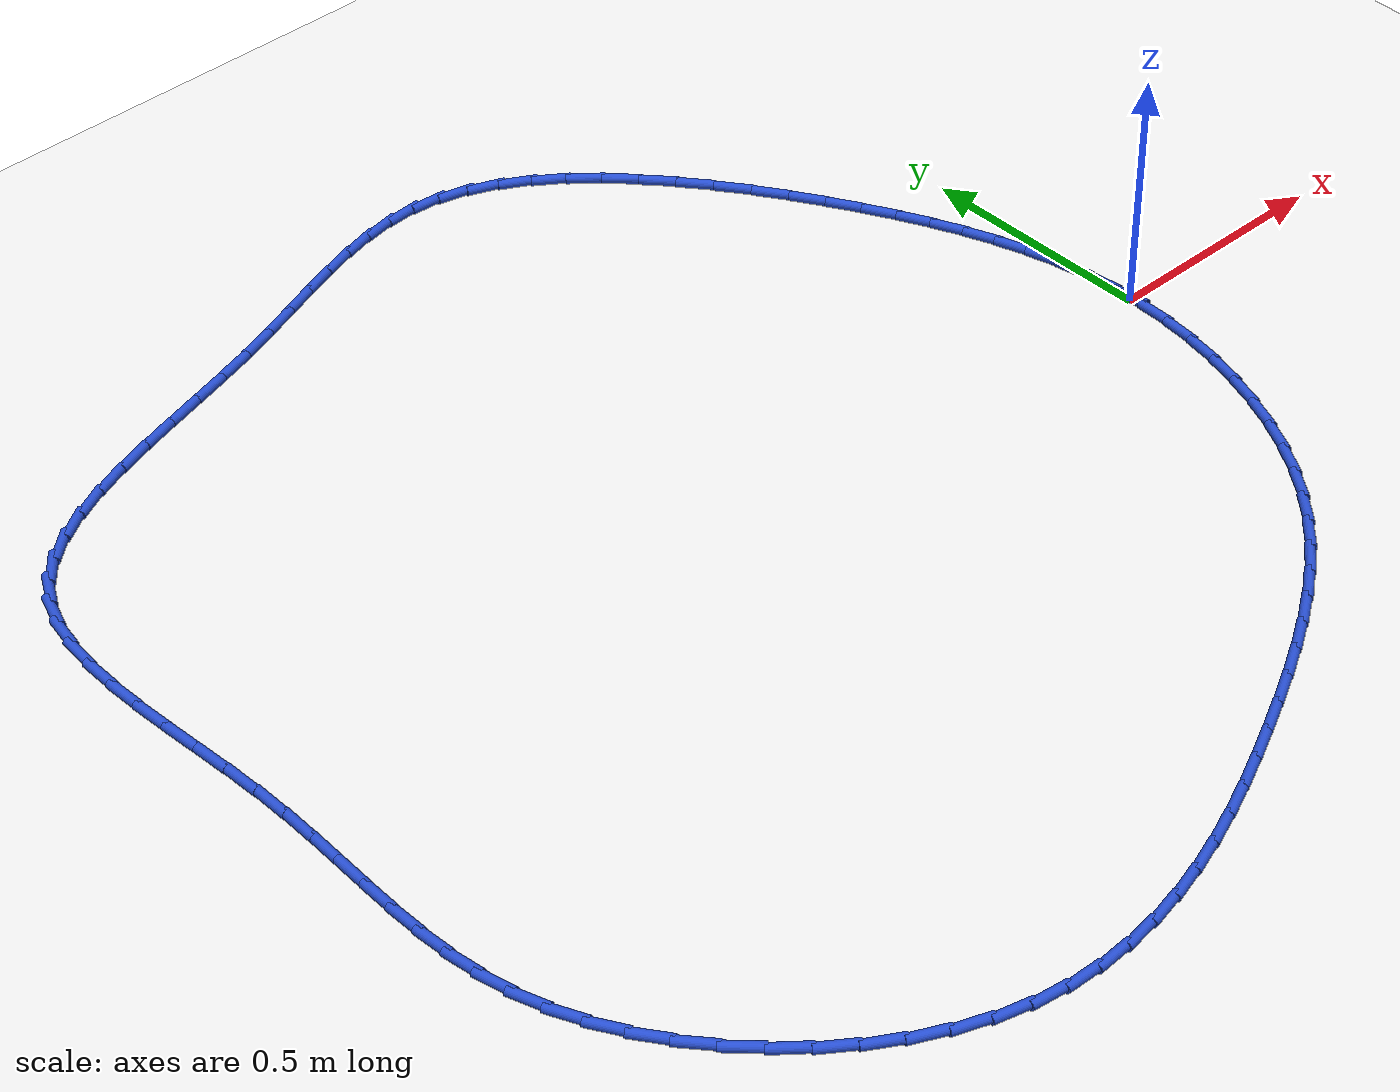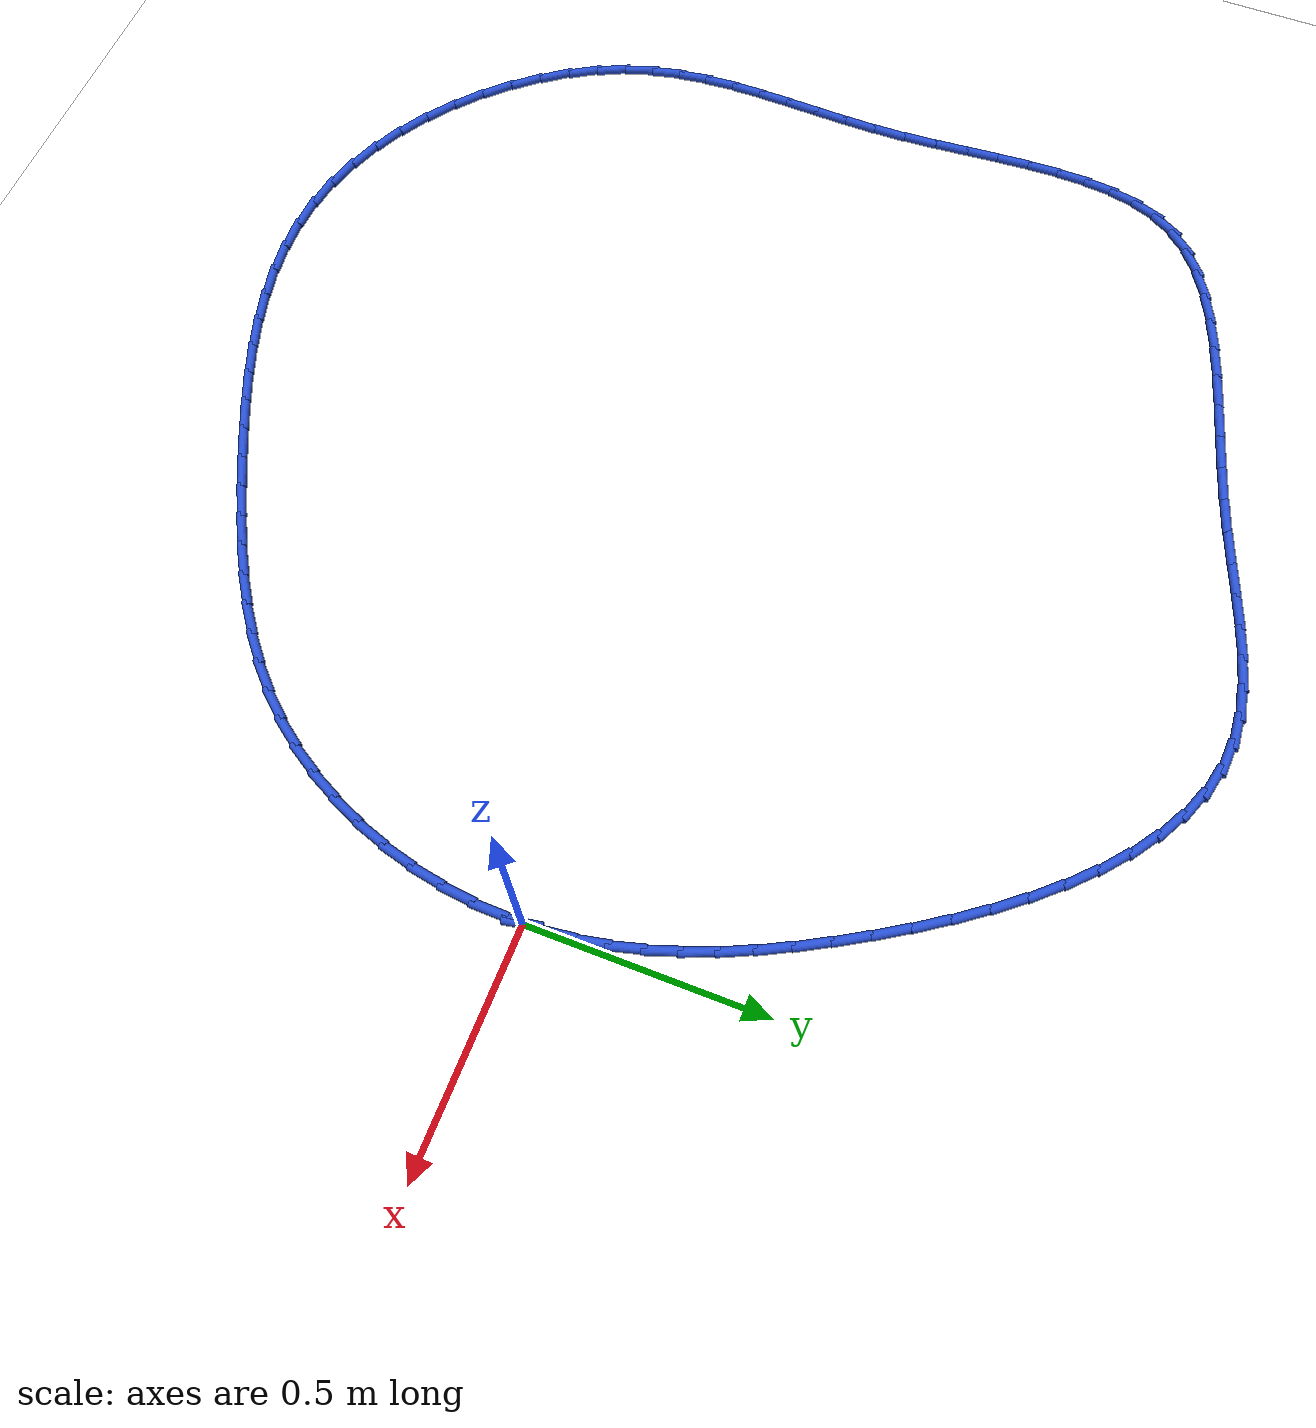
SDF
<sdf version="1.6">
 <world name="default">
  <light name="sun" type="directional">
   <pose>0 0 10 0 -0 0</pose>
   <diffuse>0.8 0.8 0.8 1</diffuse>
   <specular>0.2 0.2 0.2 1</specular>
   <attenuation>
    <range>1000</range>
    <constant>0.9</constant>
    <linear>0.01</linear>
    <quadratic>0.001</quadratic>
   </attenuation>
   <direction>-0.5 0.1 -0.9</direction>
  </light>
  <model name="ground_plane">
   <static>1</static>
   <link name="link">
    <collision name="collision">
     <geometry><plane><normal>0 0 1</normal><size>100 100</size></plane></geometry>
     <surface><friction><ode><mu>100</mu><mu2>50</mu2></ode></friction></surface>
    </collision>
    <visual name="visual">
     <cast_shadows>0</cast_shadows>
     <geometry><plane><normal>0 0 1</normal><size>100 100</size></plane></geometry>
     <material>
      <script><uri>file://media/materials/scripts/gazebo.material</uri><name>Gazebo/WhiteGlow</name></script>
     </material>
    </visual>
   </link>
  </model>
  <gravity>0 0 -9.8</gravity>
  <magnetic_field>6e-06 2.3e-05 -4.2e-05</magnetic_field>
  <atmosphere type="adiabatic"/>
  <physics name="default_physics" default="0" type="ode">
   <max_step_size>0.001</max_step_size>
   <real_time_factor>1</real_time_factor>
   <real_time_update_rate>1000</real_time_update_rate>
  </physics>
  <scene><ambient>0.4 0.4 0.4 1</ambient><background>0.7 0.7 0.7 1</background><shadows>1</shadows></scene>
  <spherical_coordinates>
   <surface_model>EARTH_WGS84</surface_model>
   <latitude_deg>0</latitude_deg>
   <longitude_deg>0</longitude_deg>
   <elevation>0</elevation>
   <heading_deg>0</heading_deg>
  </spherical_coordinates>
  <model name="line">
   <link name="link_0">
    <pose>-2.7755575615628914e-17 2.220446049250313e-16 0.01 0 1.57 -1.5152938690150113</pose>
    <collision name="collision">
     <geometry><cylinder><radius>0.01</radius><length>0.08</length></cylinder></geometry>
    </collision>
    <visual name="visual">
     <material>
      <script><name>Gazebo/Blue</name><uri>file://media/materials/scripts/gazebo.material</uri></script>
     </material>
     <geometry><cylinder><radius>0.01</radius><length>0.08</length></cylinder></geometry>
    </visual>
   </link>
   <link name="link_1">
    <pose>-0.0037324579924082374 0.06717944958742185 0.01 0 1.57 -1.4393812337062177</pose>
    <collision name="collision">
     <geometry><cylinder><radius>0.01</radius><length>0.08</length></cylinder></geometry>
    </collision>
    <visual name="visual">
     <material>
      <script><name>Gazebo/Blue</name><uri>file://media/materials/scripts/gazebo.material</uri></script>
     </material>
     <geometry><cylinder><radius>0.01</radius><length>0.08</length></cylinder></geometry>
    </visual>
   </link>
   <link name="link_2">
    <pose>-0.012479100450418975 0.13335322685976894 0.01 0 1.57 -1.3676530293760158</pose>
    <collision name="collision">
     <geometry><cylinder><radius>0.01</radius><length>0.08</length></cylinder></geometry>
    </collision>
    <visual name="visual">
     <material>
      <script><name>Gazebo/Blue</name><uri>file://media/materials/scripts/gazebo.material</uri></script>
     </material>
     <geometry><cylinder><radius>0.01</radius><length>0.08</length></cylinder></geometry>
    </visual>
   </link>
   <link name="link_3">
    <pose>-0.025942071263870412 0.19871234254347592 0.01 0 1.57 -1.3012931891812183</pose>
    <collision name="collision">
     <geometry><cylinder><radius>0.01</radius><length>0.08</length></cylinder></geometry>
    </collision>
    <visual name="visual">
     <material>
      <script><name>Gazebo/Blue</name><uri>file://media/materials/scripts/gazebo.material</uri></script>
     </material>
     <geometry><cylinder><radius>0.01</radius><length>0.08</length></cylinder></geometry>
    </visual>
   </link>
   <link name="link_4">
    <pose>-0.0438235143226008 0.2634478073649774 0.01 0 1.57 -1.2411200686018218</pose>
    <collision name="collision">
     <geometry><cylinder><radius>0.01</radius><length>0.08</length></cylinder></geometry>
    </collision>
    <visual name="visual">
     <material>
      <script><name>Gazebo/Blue</name><uri>file://media/materials/scripts/gazebo.material</uri></script>
     </material>
     <geometry><cylinder><radius>0.01</radius><length>0.08</length></cylinder></geometry>
    </visual>
   </link>
   <link name="link_5">
    <pose>-0.06582557351644834 0.3277506320507078 0.01 0 1.57 -1.1875968780372939</pose>
    <collision name="collision">
     <geometry><cylinder><radius>0.01</radius><length>0.08</length></cylinder></geometry>
    </collision>
    <visual name="visual">
     <material>
      <script><name>Gazebo/Blue</name><uri>file://media/materials/scripts/gazebo.material</uri></script>
     </material>
     <geometry><cylinder><radius>0.01</radius><length>0.08</length></cylinder></geometry>
    </visual>
   </link>
   <link name="link_6">
    <pose>-0.0916503927352513 0.39181182732710174 0.01 0 1.57 -1.1408850441170455</pose>
    <collision name="collision">
     <geometry><cylinder><radius>0.01</radius><length>0.08</length></cylinder></geometry>
    </collision>
    <visual name="visual">
     <material>
      <script><name>Gazebo/Blue</name><uri>file://media/materials/scripts/gazebo.material</uri></script>
     </material>
     <geometry><cylinder><radius>0.01</radius><length>0.08</length></cylinder></geometry>
    </visual>
   </link>
   <link name="link_7">
    <pose>-0.12100011586884792 0.45582240392059376 0.01 0 1.57 -1.1009169406234915</pose>
    <collision name="collision">
     <geometry><cylinder><radius>0.01</radius><length>0.08</length></cylinder></geometry>
    </collision>
    <visual name="visual">
     <material>
      <script><name>Gazebo/Blue</name><uri>file://media/materials/scripts/gazebo.material</uri></script>
     </material>
     <geometry><cylinder><radius>0.01</radius><length>0.08</length></cylinder></geometry>
    </visual>
   </link>
   <link name="link_8">
    <pose>-0.15357688680707635 0.5199733725576181 0.01 0 1.57 -1.067469149188227</pose>
    <collision name="collision">
     <geometry><cylinder><radius>0.01</radius><length>0.08</length></cylinder></geometry>
    </collision>
    <visual name="visual">
     <material>
      <script><name>Gazebo/Blue</name><uri>file://media/materials/scripts/gazebo.material</uri></script>
     </material>
     <geometry><cylinder><radius>0.01</radius><length>0.08</length></cylinder></geometry>
    </visual>
   </link>
   <link name="link_9">
    <pose>-0.1890828494397748 0.5844557439646094 0.01 0 1.57 -1.0389162937961631</pose>
    <collision name="collision">
     <geometry><cylinder><radius>0.01</radius><length>0.08</length></cylinder></geometry>
    </collision>
    <visual name="visual">
     <material>
      <script><name>Gazebo/Blue</name><uri>file://media/materials/scripts/gazebo.material</uri></script>
     </material>
     <geometry><cylinder><radius>0.01</radius><length>0.08</length></cylinder></geometry>
    </visual>
   </link>
   <link name="link_10">
    <pose>-0.22724595656164034 0.6493098783951444 0.01 0 1.57 -1.0086756082844432</pose>
    <collision name="collision">
     <geometry><cylinder><radius>0.01</radius><length>0.08</length></cylinder></geometry>
    </collision>
    <visual name="visual">
     <material>
      <script><name>Gazebo/Blue</name><uri>file://media/materials/scripts/gazebo.material</uri></script>
     </material>
     <geometry><cylinder><radius>0.01</radius><length>0.08</length></cylinder></geometry>
    </visual>
   </link>
   <link name="link_11">
    <pose>-0.26791465160102546 0.7138728140891575 0.01 0 1.57 -0.9742309022770782</pose>
    <collision name="collision">
     <geometry><cylinder><radius>0.01</radius><length>0.08</length></cylinder></geometry>
    </collision>
    <visual name="visual">
     <material>
      <script><name>Gazebo/Blue</name><uri>file://media/materials/scripts/gazebo.material</uri></script>
     </material>
     <geometry><cylinder><radius>0.01</radius><length>0.08</length></cylinder></geometry>
    </visual>
   </link>
   <link name="link_12">
    <pose>-0.31097251192269515 0.7772765071971689 0.01 0 1.57 -0.9346521995005331</pose>
    <collision name="collision">
     <geometry><cylinder><radius>0.01</radius><length>0.08</length></cylinder></geometry>
    </collision>
    <visual name="visual">
     <material>
      <script><name>Gazebo/Blue</name><uri>file://media/materials/scripts/gazebo.material</uri></script>
     </material>
     <geometry><cylinder><radius>0.01</radius><length>0.08</length></cylinder></geometry>
    </visual>
   </link>
   <link name="link_13">
    <pose>-0.356303119007599 0.8386528898429089 0.01 0 1.57 -0.8887773140389841</pose>
    <collision name="collision">
     <geometry><cylinder><radius>0.01</radius><length>0.08</length></cylinder></geometry>
    </collision>
    <visual name="visual">
     <material>
      <script><name>Gazebo/Blue</name><uri>file://media/materials/scripts/gazebo.material</uri></script>
     </material>
     <geometry><cylinder><radius>0.01</radius><length>0.08</length></cylinder></geometry>
    </visual>
   </link>
   <link name="link_14">
    <pose>-0.4037900543366866 0.8971338941501075 0.01 0 1.57 -0.8351507571265869</pose>
    <collision name="collision">
     <geometry><cylinder><radius>0.01</radius><length>0.08</length></cylinder></geometry>
    </collision>
    <visual name="visual">
     <material>
      <script><name>Gazebo/Blue</name><uri>file://media/materials/scripts/gazebo.material</uri></script>
     </material>
     <geometry><cylinder><radius>0.01</radius><length>0.08</length></cylinder></geometry>
    </visual>
   </link>
   <link name="link_15">
    <pose>-0.45331689939090763 0.9518514522424947 0.01 0 1.57 -0.7719624848589884</pose>
    <collision name="collision">
     <geometry><cylinder><radius>0.01</radius><length>0.08</length></cylinder></geometry>
    </collision>
    <visual name="visual">
     <material>
      <script><name>Gazebo/Blue</name><uri>file://media/materials/scripts/gazebo.material</uri></script>
     </material>
     <geometry><cylinder><radius>0.01</radius><length>0.08</length></cylinder></geometry>
    </visual>
   </link>
   <link name="link_16">
    <pose>-0.5047672356512118 1.0019374962438004 0.01 0 1.57 -0.697008834923665</pose>
    <collision name="collision">
     <geometry><cylinder><radius>0.01</radius><length>0.08</length></cylinder></geometry>
    </collision>
    <visual name="visual">
     <material>
      <script><name>Gazebo/Blue</name><uri>file://media/materials/scripts/gazebo.material</uri></script>
     </material>
     <geometry><cylinder><radius>0.01</radius><length>0.08</length></cylinder></geometry>
    </visual>
   </link>
   <link name="link_17">
    <pose>-0.5580246445985485 1.0465239582777544 0.01 0 1.57 -0.6077292989462755</pose>
    <collision name="collision">
     <geometry><cylinder><radius>0.01</radius><length>0.08</length></cylinder></geometry>
    </collision>
    <visual name="visual">
     <material>
      <script><name>Gazebo/Blue</name><uri>file://media/materials/scripts/gazebo.material</uri></script>
     </material>
     <geometry><cylinder><radius>0.01</radius><length>0.08</length></cylinder></geometry>
    </visual>
   </link>
   <link name="link_18">
    <pose>-0.6129727077138674 1.0847427704680868 0.01 0 1.57 -0.5014271487873172</pose>
    <collision name="collision">
     <geometry><cylinder><radius>0.01</radius><length>0.08</length></cylinder></geometry>
    </collision>
    <visual name="visual">
     <material>
      <script><name>Gazebo/Blue</name><uri>file://media/materials/scripts/gazebo.material</uri></script>
     </material>
     <geometry><cylinder><radius>0.01</radius><length>0.08</length></cylinder></geometry>
    </visual>
   </link>
   <link name="link_19">
    <pose>-0.6694950064781184 1.115725864938528 0.01 0 1.57 -0.37584785406823223</pose>
    <collision name="collision">
     <geometry><cylinder><radius>0.01</radius><length>0.08</length></cylinder></geometry>
    </collision>
    <visual name="visual">
     <material>
      <script><name>Gazebo/Blue</name><uri>file://media/materials/scripts/gazebo.material</uri></script>
     </material>
     <geometry><cylinder><radius>0.01</radius><length>0.08</length></cylinder></geometry>
    </visual>
   </link>
   <link name="link_20">
    <pose>-0.7274751223722509 1.1386051738128076 0.01 0 1.57 -0.23028311190920409</pose>
    <collision name="collision">
     <geometry><cylinder><radius>0.01</radius><length>0.08</length></cylinder></geometry>
    </collision>
    <visual name="visual">
     <material>
      <script><name>Gazebo/Blue</name><uri>file://media/materials/scripts/gazebo.material</uri></script>
     </material>
     <geometry><cylinder><radius>0.01</radius><length>0.08</length></cylinder></geometry>
    </visual>
   </link>
   <link name="link_21">
    <pose>-0.7867966368772144 1.1525126292146555 0.01 0 1.57 -0.06968694014164416</pose>
    <collision name="collision">
     <geometry><cylinder><radius>0.01</radius><length>0.08</length></cylinder></geometry>
    </collision>
    <visual name="visual">
     <material>
      <script><name>Gazebo/Blue</name><uri>file://media/materials/scripts/gazebo.material</uri></script>
     </material>
     <geometry><cylinder><radius>0.01</radius><length>0.08</length></cylinder></geometry>
    </visual>
   </link>
   <link name="link_22">
    <pose>-0.8473571900533725 1.1567397537606539 0.01 0 1.57 0.07581666446850015</pose>
    <collision name="collision">
     <geometry><cylinder><radius>0.01</radius><length>0.08</length></cylinder></geometry>
    </collision>
    <visual name="visual">
     <material>
      <script><name>Gazebo/Blue</name><uri>file://media/materials/scripts/gazebo.material</uri></script>
     </material>
     <geometry><cylinder><radius>0.01</radius><length>0.08</length></cylinder></geometry>
    </visual>
   </link>
   <link name="link_23">
    <pose>-0.9091834952761789 1.152043287381552 0.01 0 1.57 0.18882436664165575</pose>
    <collision name="collision">
     <geometry><cylinder><radius>0.01</radius><length>0.08</length></cylinder></geometry>
    </collision>
    <visual name="visual">
     <material>
      <script><name>Gazebo/Blue</name><uri>file://media/materials/scripts/gazebo.material</uri></script>
     </material>
     <geometry><cylinder><radius>0.01</radius><length>0.08</length></cylinder></geometry>
    </visual>
   </link>
   <link name="link_24">
    <pose>-0.9723716813905122 1.1399679620698235 0.01 0 1.57 0.2701483204243459</pose>
    <collision name="collision">
     <geometry><cylinder><radius>0.01</radius><length>0.08</length></cylinder></geometry>
    </collision>
    <visual name="visual">
     <material>
      <script><name>Gazebo/Blue</name><uri>file://media/materials/scripts/gazebo.material</uri></script>
     </material>
     <geometry><cylinder><radius>0.01</radius><length>0.08</length></cylinder></geometry>
    </visual>
   </link>
   <link name="link_25">
    <pose>-1.0370185452759166 1.1220660932286322 0.01 0 1.57 0.3232268997830258</pose>
    <collision name="collision">
     <geometry><cylinder><radius>0.01</radius><length>0.08</length></cylinder></geometry>
    </collision>
    <visual name="visual">
     <material>
      <script><name>Gazebo/Blue</name><uri>file://media/materials/scripts/gazebo.material</uri></script>
     </material>
     <geometry><cylinder><radius>0.01</radius><length>0.08</length></cylinder></geometry>
    </visual>
   </link>
   <link name="link_26">
    <pose>-1.1032208838119355 1.0998899962611401 0.01 0 1.57 0.3516784273213751</pose>
    <collision name="collision">
     <geometry><cylinder><radius>0.01</radius><length>0.08</length></cylinder></geometry>
    </collision>
    <visual name="visual">
     <material>
      <script><name>Gazebo/Blue</name><uri>file://media/materials/scripts/gazebo.material</uri></script>
     </material>
     <geometry><cylinder><radius>0.01</radius><length>0.08</length></cylinder></geometry>
    </visual>
   </link>
   <link name="link_27">
    <pose>-1.1710754938781127 1.074991986570511 0.01 0 1.57 0.3583452126233452</pose>
    <collision name="collision">
     <geometry><cylinder><radius>0.01</radius><length>0.08</length></cylinder></geometry>
    </collision>
    <visual name="visual">
     <material>
      <script><name>Gazebo/Blue</name><uri>file://media/materials/scripts/gazebo.material</uri></script>
     </material>
     <geometry><cylinder><radius>0.01</radius><length>0.08</length></cylinder></geometry>
    </visual>
   </link>
   <link name="link_28">
    <pose>-1.2406791723539912 1.0489243795599075 0.01 0 1.57 0.34509772916487325</pose>
    <collision name="collision">
     <geometry><cylinder><radius>0.01</radius><length>0.08</length></cylinder></geometry>
    </collision>
    <visual name="visual">
     <material>
      <script><name>Gazebo/Blue</name><uri>file://media/materials/scripts/gazebo.material</uri></script>
     </material>
     <geometry><cylinder><radius>0.01</radius><length>0.08</length></cylinder></geometry>
    </visual>
   </link>
   <link name="link_29">
    <pose>-1.3121287161191146 1.0232394906324933 0.01 0 1.57 0.3153451276832111</pose>
    <collision name="collision">
     <geometry><cylinder><radius>0.01</radius><length>0.08</length></cylinder></geometry>
    </collision>
    <visual name="visual">
     <material>
      <script><name>Gazebo/Blue</name><uri>file://media/materials/scripts/gazebo.material</uri></script>
     </material>
     <geometry><cylinder><radius>0.01</radius><length>0.08</length></cylinder></geometry>
    </visual>
   </link>
   <link name="link_30">
    <pose>-1.3854391380199347 0.9993233393725277 0.01 0 1.57 0.2899138663210445</pose>
    <collision name="collision">
     <geometry><cylinder><radius>0.01</radius><length>0.08</length></cylinder></geometry>
    </collision>
    <visual name="visual">
     <material>
      <script><name>Gazebo/Blue</name><uri>file://media/materials/scripts/gazebo.material</uri></script>
     </material>
     <geometry><cylinder><radius>0.01</radius><length>0.08</length></cylinder></geometry>
    </visual>
   </link>
   <link name="link_31">
    <pose>-1.4599100370422295 0.9771072563581508 0.01 0 1.57 0.27871663676528924</pose>
    <collision name="collision">
     <geometry><cylinder><radius>0.01</radius><length>0.08</length></cylinder></geometry>
    </collision>
    <visual name="visual">
     <material>
      <script><name>Gazebo/Blue</name><uri>file://media/materials/scripts/gazebo.material</uri></script>
     </material>
     <geometry><cylinder><radius>0.01</radius><length>0.08</length></cylinder></geometry>
    </visual>
   </link>
   <link name="link_32">
    <pose>-1.5344711228997983 0.9557704566620484 0.01 0 1.57 0.28159316629971526</pose>
    <collision name="collision">
     <geometry><cylinder><radius>0.01</radius><length>0.08</length></cylinder></geometry>
    </collision>
    <visual name="visual">
     <material>
      <script><name>Gazebo/Blue</name><uri>file://media/materials/scripts/gazebo.material</uri></script>
     </material>
     <geometry><cylinder><radius>0.01</radius><length>0.08</length></cylinder></geometry>
    </visual>
   </link>
   <link name="link_33">
    <pose>-1.6080490024988794 0.9344858462534685 0.01 0 1.57 0.2991753224856708</pose>
    <collision name="collision">
     <geometry><cylinder><radius>0.01</radius><length>0.08</length></cylinder></geometry>
    </collision>
    <visual name="visual">
     <material>
      <script><name>Gazebo/Blue</name><uri>file://media/materials/scripts/gazebo.material</uri></script>
     </material>
     <geometry><cylinder><radius>0.01</radius><length>0.08</length></cylinder></geometry>
    </visual>
   </link>
   <link name="link_34">
    <pose>-1.6795702827457095 0.9124263311016578 0.01 0 1.57 0.3330824690856946</pose>
    <collision name="collision">
     <geometry><cylinder><radius>0.01</radius><length>0.08</length></cylinder></geometry>
    </collision>
    <visual name="visual">
     <material>
      <script><name>Gazebo/Blue</name><uri>file://media/materials/scripts/gazebo.material</uri></script>
     </material>
     <geometry><cylinder><radius>0.01</radius><length>0.08</length></cylinder></geometry>
    </visual>
   </link>
   <link name="link_35">
    <pose>-1.7479615705465263 0.8887648171758638 0.01 0 1.57 0.3860734966340605</pose>
    <collision name="collision">
     <geometry><cylinder><radius>0.01</radius><length>0.08</length></cylinder></geometry>
    </collision>
    <visual name="visual">
     <material>
      <script><name>Gazebo/Blue</name><uri>file://media/materials/scripts/gazebo.material</uri></script>
     </material>
     <geometry><cylinder><radius>0.01</radius><length>0.08</length></cylinder></geometry>
    </visual>
   </link>
   <link name="link_36">
    <pose>-1.8121494728075676 0.8626742104453334 0.01 0 1.57 0.46216946974122214</pose>
    <collision name="collision">
     <geometry><cylinder><radius>0.01</radius><length>0.08</length></cylinder></geometry>
    </collision>
    <visual name="visual">
     <material>
      <script><name>Gazebo/Blue</name><uri>file://media/materials/scripts/gazebo.material</uri></script>
     </material>
     <geometry><cylinder><radius>0.01</radius><length>0.08</length></cylinder></geometry>
    </visual>
   </link>
   <link name="link_37">
    <pose>-1.8710605964350708 0.833327416879314 0.01 0 1.57 0.5664880834109324</pose>
    <collision name="collision">
     <geometry><cylinder><radius>0.01</radius><length>0.08</length></cylinder></geometry>
    </collision>
    <visual name="visual">
     <material>
      <script><name>Gazebo/Blue</name><uri>file://media/materials/scripts/gazebo.material</uri></script>
     </material>
     <geometry><cylinder><radius>0.01</radius><length>0.08</length></cylinder></geometry>
    </visual>
   </link>
   <link name="link_38">
    <pose>-1.9236215483352725 0.7998973424470524 0.01 0 1.57 0.7041553175357598</pose>
    <collision name="collision">
     <geometry><cylinder><radius>0.01</radius><length>0.08</length></cylinder></geometry>
    </collision>
    <visual name="visual">
     <material>
      <script><name>Gazebo/Blue</name><uri>file://media/materials/scripts/gazebo.material</uri></script>
     </material>
     <geometry><cylinder><radius>0.01</radius><length>0.08</length></cylinder></geometry>
    </visual>
   </link>
   <link name="link_39">
    <pose>-1.968758935414412 0.7615568931177964 0.01 0 1.57 0.8772799695295534</pose>
    <collision name="collision">
     <geometry><cylinder><radius>0.01</radius><length>0.08</length></cylinder></geometry>
    </collision>
    <visual name="visual">
     <material>
      <script><name>Gazebo/Blue</name><uri>file://media/materials/scripts/gazebo.material</uri></script>
     </material>
     <geometry><cylinder><radius>0.01</radius><length>0.08</length></cylinder></geometry>
    </visual>
   </link>
   <link name="link_40">
    <pose>-2.005399364578726 0.7174789748607932 0.01 0 1.57 1.0759536638700347</pose>
    <collision name="collision">
     <geometry><cylinder><radius>0.01</radius><length>0.08</length></cylinder></geometry>
    </collision>
    <visual name="visual">
     <material>
      <script><name>Gazebo/Blue</name><uri>file://media/materials/scripts/gazebo.material</uri></script>
     </material>
     <geometry><cylinder><radius>0.01</radius><length>0.08</length></cylinder></geometry>
    </visual>
   </link>
   <link name="link_41">
    <pose>-2.0326569832209938 0.6669667991365884 0.01 0 1.57 1.2550948795854673</pose>
    <collision name="collision">
     <geometry><cylinder><radius>0.01</radius><length>0.08</length></cylinder></geometry>
    </collision>
    <visual name="visual">
     <material>
      <script><name>Gazebo/Blue</name><uri>file://media/materials/scripts/gazebo.material</uri></script>
     </material>
     <geometry><cylinder><radius>0.01</radius><length>0.08</length></cylinder></geometry>
    </visual>
   </link>
   <link name="link_42">
    <pose>-2.051144616736726 0.6103648777512957 0.01 0 1.57 1.3940144163646528</pose>
    <collision name="collision">
     <geometry><cylinder><radius>0.01</radius><length>0.08</length></cylinder></geometry>
    </collision>
    <visual name="visual">
     <material>
      <script><name>Gazebo/Blue</name><uri>file://media/materials/scripts/gazebo.material</uri></script>
     </material>
     <geometry><cylinder><radius>0.01</radius><length>0.08</length></cylinder></geometry>
    </visual>
   </link>
   <link name="link_43">
    <pose>-2.0621935569453322 0.5485169220282836 0.01 0 1.57 1.4962738638718596</pose>
    <collision name="collision">
     <geometry><cylinder><radius>0.01</radius><length>0.08</length></cylinder></geometry>
    </collision>
    <visual name="visual">
     <material>
      <script><name>Gazebo/Blue</name><uri>file://media/materials/scripts/gazebo.material</uri></script>
     </material>
     <geometry><cylinder><radius>0.01</radius><length>0.08</length></cylinder></geometry>
    </visual>
   </link>
   <link name="link_44">
    <pose>-2.067139616342202 0.48226978431351136 0.01 0 1.57 1.5682319707195869</pose>
    <collision name="collision">
     <geometry><cylinder><radius>0.01</radius><length>0.08</length></cylinder></geometry>
    </collision>
    <visual name="visual">
     <material>
      <script><name>Gazebo/Blue</name><uri>file://media/materials/scripts/gazebo.material</uri></script>
     </material>
     <geometry><cylinder><radius>0.01</radius><length>0.08</length></cylinder></geometry>
    </visual>
   </link>
   <link name="link_45">
    <pose>-2.067318607422725 0.4124703169529371 0.01 0 1.57 -1.525970609644272</pose>
    <collision name="collision">
     <geometry><cylinder><radius>0.01</radius><length>0.08</length></cylinder></geometry>
    </collision>
    <visual name="visual">
     <material>
      <script><name>Gazebo/Blue</name><uri>file://media/materials/scripts/gazebo.material</uri></script>
     </material>
     <geometry><cylinder><radius>0.01</radius><length>0.08</length></cylinder></geometry>
    </visual>
   </link>
   <link name="link_46">
    <pose>-2.0640663426822923 0.3399653722925193 0.01 0 1.57 -1.499006899940584</pose>
    <collision name="collision">
     <geometry><cylinder><radius>0.01</radius><length>0.08</length></cylinder></geometry>
    </collision>
    <visual name="visual">
     <material>
      <script><name>Gazebo/Blue</name><uri>file://media/materials/scripts/gazebo.material</uri></script>
     </material>
     <geometry><cylinder><radius>0.01</radius><length>0.08</length></cylinder></geometry>
    </visual>
   </link>
   <link name="link_47">
    <pose>-2.0587186346162927 0.2656018026782165 0.01 0 1.57 -1.489947260047532</pose>
    <collision name="collision">
     <geometry><cylinder><radius>0.01</radius><length>0.08</length></cylinder></geometry>
    </collision>
    <visual name="visual">
     <material>
      <script><name>Gazebo/Blue</name><uri>file://media/materials/scripts/gazebo.material</uri></script>
     </material>
     <geometry><cylinder><radius>0.01</radius><length>0.08</length></cylinder></geometry>
    </visual>
   </link>
   <link name="link_48">
    <pose>-2.0526112957201166 0.19022646045598748 0.01 0 1.57 -1.4977054493900224</pose>
    <collision name="collision">
     <geometry><cylinder><radius>0.01</radius><length>0.08</length></cylinder></geometry>
    </collision>
    <visual name="visual">
     <material>
      <script><name>Gazebo/Blue</name><uri>file://media/materials/scripts/gazebo.material</uri></script>
     </material>
     <geometry><cylinder><radius>0.01</radius><length>0.08</length></cylinder></geometry>
    </visual>
   </link>
   <link name="link_49">
    <pose>-2.0470801384891546 0.11468619797179004 0.01 0 1.57 -1.5224870531298895</pose>
    <collision name="collision">
     <geometry><cylinder><radius>0.01</radius><length>0.08</length></cylinder></geometry>
    </collision>
    <visual name="visual">
     <material>
      <script><name>Gazebo/Blue</name><uri>file://media/materials/scripts/gazebo.material</uri></script>
     </material>
     <geometry><cylinder><radius>0.01</radius><length>0.08</length></cylinder></geometry>
    </visual>
   </link>
   <link name="link_50">
    <pose>-2.043460970946686 0.039827865898390796 0.01 0 1.57 -1.559798061486493</pose>
    <collision name="collision">
     <geometry><cylinder><radius>0.01</radius><length>0.08</length></cylinder></geometry>
    </collision>
    <visual name="visual">
     <material>
      <script><name>Gazebo/Blue</name><uri>file://media/materials/scripts/gazebo.material</uri></script>
     </material>
     <geometry><cylinder><radius>0.01</radius><length>0.08</length></cylinder></geometry>
    </visual>
   </link>
   <link name="link_51">
    <pose>-2.0426526424631226 -0.03366516853341144 0.01 0 1.57 1.553227917231396</pose>
    <collision name="collision">
     <geometry><cylinder><radius>0.01</radius><length>0.08</length></cylinder></geometry>
    </collision>
    <visual name="visual">
     <material>
      <script><name>Gazebo/Blue</name><uri>file://media/materials/scripts/gazebo.material</uri></script>
     </material>
     <geometry><cylinder><radius>0.01</radius><length>0.08</length></cylinder></geometry>
    </visual>
   </link>
   <link name="link_52">
    <pose>-2.0439186856580984 -0.1057213744974032 0.01 0 1.57 1.5393817264204084</pose>
    <collision name="collision">
     <geometry><cylinder><radius>0.01</radius><length>0.08</length></cylinder></geometry>
    </collision>
    <visual name="visual">
     <material>
      <script><name>Gazebo/Blue</name><uri>file://media/materials/scripts/gazebo.material</uri></script>
     </material>
     <geometry><cylinder><radius>0.01</radius><length>0.08</length></cylinder></geometry>
    </visual>
   </link>
   <link name="link_53">
    <pose>-2.0461401444433522 -0.17641232525758493 0.01 0 1.57 1.5411508462643393</pose>
    <collision name="collision">
     <geometry><cylinder><radius>0.01</radius><length>0.08</length></cylinder></geometry>
    </collision>
    <visual name="visual">
     <material>
      <script><name>Gazebo/Blue</name><uri>file://media/materials/scripts/gazebo.material</uri></script>
     </material>
     <geometry><cylinder><radius>0.01</radius><length>0.08</length></cylinder></geometry>
    </visual>
   </link>
   <link name="link_54">
    <pose>-2.0481980627306258 -0.2458095940779571 0.01 0 1.57 1.5594228549323301</pose>
    <collision name="collision">
     <geometry><cylinder><radius>0.01</radius><length>0.08</length></cylinder></geometry>
    </collision>
    <visual name="visual">
     <material>
      <script><name>Gazebo/Blue</name><uri>file://media/materials/scripts/gazebo.material</uri></script>
     </material>
     <geometry><cylinder><radius>0.01</radius><length>0.08</length></cylinder></geometry>
    </visual>
   </link>
   <link name="link_55">
    <pose>-2.0489734844316585 -0.3139847542225203 0.01 0 1.57 -1.54654088204829</pose>
    <collision name="collision">
     <geometry><cylinder><radius>0.01</radius><length>0.08</length></cylinder></geometry>
    </collision>
    <visual name="visual">
     <material>
      <script><name>Gazebo/Blue</name><uri>file://media/materials/scripts/gazebo.material</uri></script>
     </material>
     <geometry><cylinder><radius>0.01</radius><length>0.08</length></cylinder></geometry>
    </visual>
   </link>
   <link name="link_56">
    <pose>-2.047347453458192 -0.3810093789552748 0.01 0 1.57 -1.492913571543087</pose>
    <collision name="collision">
     <geometry><cylinder><radius>0.01</radius><length>0.08</length></cylinder></geometry>
    </collision>
    <visual name="visual">
     <material>
      <script><name>Gazebo/Blue</name><uri>file://media/materials/scripts/gazebo.material</uri></script>
     </material>
     <geometry><cylinder><radius>0.01</radius><length>0.08</length></cylinder></geometry>
    </visual>
   </link>
   <link name="link_57">
    <pose>-2.0422010137219653 -0.44695504154022103 0.01 0 1.57 -1.421227774433209</pose>
    <collision name="collision">
     <geometry><cylinder><radius>0.01</radius><length>0.08</length></cylinder></geometry>
    </collision>
    <visual name="visual">
     <material>
      <script><name>Gazebo/Blue</name><uri>file://media/materials/scripts/gazebo.material</uri></script>
     </material>
     <geometry><cylinder><radius>0.01</radius><length>0.08</length></cylinder></geometry>
    </visual>
   </link>
   <link name="link_58">
    <pose>-2.03241520913472 -0.5118933152413592 0.01 0 1.57 -1.3325416623573698</pose>
    <collision name="collision">
     <geometry><cylinder><radius>0.01</radius><length>0.08</length></cylinder></geometry>
    </collision>
    <visual name="visual">
     <material>
      <script><name>Gazebo/Blue</name><uri>file://media/materials/scripts/gazebo.material</uri></script>
     </material>
     <geometry><cylinder><radius>0.01</radius><length>0.08</length></cylinder></geometry>
    </visual>
   </link>
   <link name="link_59">
    <pose>-2.0168710836081956 -0.5758957733226906 0.01 0 1.57 -1.2300662639051654</pose>
    <collision name="collision">
     <geometry><cylinder><radius>0.01</radius><length>0.08</length></cylinder></geometry>
    </collision>
    <visual name="visual">
     <material>
      <script><name>Gazebo/Blue</name><uri>file://media/materials/scripts/gazebo.material</uri></script>
     </material>
     <geometry><cylinder><radius>0.01</radius><length>0.08</length></cylinder></geometry>
    </visual>
   </link>
   <link name="link_60">
    <pose>-1.9944906034994814 -0.639017880783924 0.01 0 1.57 -1.1272296574057237</pose>
    <collision name="collision">
     <geometry><cylinder><radius>0.01</radius><length>0.08</length></cylinder></geometry>
    </collision>
    <visual name="visual">
     <material>
      <script><name>Gazebo/Blue</name><uri>file://media/materials/scripts/gazebo.material</uri></script>
     </material>
     <geometry><cylinder><radius>0.01</radius><length>0.08</length></cylinder></geometry>
    </visual>
   </link>
   <link name="link_61">
    <pose>-1.9650501986040287 -0.7009787609722739 0.01 0 1.57 -1.0328869918723198</pose>
    <collision name="collision">
     <geometry><cylinder><radius>0.01</radius><length>0.08</length></cylinder></geometry>
    </collision>
    <visual name="visual">
     <material>
      <script><name>Gazebo/Blue</name><uri>file://media/materials/scripts/gazebo.material</uri></script>
     </material>
     <geometry><cylinder><radius>0.01</radius><length>0.08</length></cylinder></geometry>
    </visual>
   </link>
   <link name="link_62">
    <pose>-1.9291351764419813 -0.7611791394447448 0.01 0 1.57 -0.9452225760270214</pose>
    <collision name="collision">
     <geometry><cylinder><radius>0.01</radius><length>0.08</length></cylinder></geometry>
    </collision>
    <visual name="visual">
     <material>
      <script><name>Gazebo/Blue</name><uri>file://media/materials/scripts/gazebo.material</uri></script>
     </material>
     <geometry><cylinder><radius>0.01</radius><length>0.08</length></cylinder></geometry>
    </visual>
   </link>
   <link name="link_63">
    <pose>-1.88736264124427 -0.8190072256485013 0.01 0 1.57 -0.862130132301999</pose>
    <collision name="collision">
     <geometry><cylinder><radius>0.01</radius><length>0.08</length></cylinder></geometry>
    </collision>
    <visual name="visual">
     <material>
      <script><name>Gazebo/Blue</name><uri>file://media/materials/scripts/gazebo.material</uri></script>
     </material>
     <geometry><cylinder><radius>0.01</radius><length>0.08</length></cylinder></geometry>
    </visual>
   </link>
   <link name="link_64">
    <pose>-1.8403496972418254 -0.8738512290307074 0.01 0 1.57 -0.781625805215354</pose>
    <collision name="collision">
     <geometry><cylinder><radius>0.01</radius><length>0.08</length></cylinder></geometry>
    </collision>
    <visual name="visual">
     <material>
      <script><name>Gazebo/Blue</name><uri>file://media/materials/scripts/gazebo.material</uri></script>
     </material>
     <geometry><cylinder><radius>0.01</radius><length>0.08</length></cylinder></geometry>
    </visual>
   </link>
   <link name="link_65">
    <pose>-1.7887134486655774 -0.9250993590385279 0.01 0 1.57 -0.7018210189105037</pose>
    <collision name="collision">
     <geometry><cylinder><radius>0.01</radius><length>0.08</length></cylinder></geometry>
    </collision>
    <visual name="visual">
     <material>
      <script><name>Gazebo/Blue</name><uri>file://media/materials/scripts/gazebo.material</uri></script>
     </material>
     <geometry><cylinder><radius>0.01</radius><length>0.08</length></cylinder></geometry>
    </visual>
   </link>
   <link name="link_66">
    <pose>-1.7330709997464564 -0.9721398251191269 0.01 0 1.57 -0.6208731282419224</pose>
    <collision name="collision">
     <geometry><cylinder><radius>0.01</radius><length>0.08</length></cylinder></geometry>
    </collision>
    <visual name="visual">
     <material>
      <script><name>Gazebo/Blue</name><uri>file://media/materials/scripts/gazebo.material</uri></script>
     </material>
     <geometry><cylinder><radius>0.01</radius><length>0.08</length></cylinder></geometry>
    </visual>
   </link>
   <link name="link_67">
    <pose>-1.6740394547153918 -1.0143608367196684 0.01 0 1.57 -0.5369340035020307</pose>
    <collision name="collision">
     <geometry><cylinder><radius>0.01</radius><length>0.08</length></cylinder></geometry>
    </collision>
    <visual name="visual">
     <material>
      <script><name>Gazebo/Blue</name><uri>file://media/materials/scripts/gazebo.material</uri></script>
     </material>
     <geometry><cylinder><radius>0.01</radius><length>0.08</length></cylinder></geometry>
    </visual>
   </link>
   <link name="link_68">
    <pose>-1.6122359178033148 -1.0511506032873168 0.01 0 1.57 -0.4481130779475619</pose>
    <collision name="collision">
     <geometry><cylinder><radius>0.01</radius><length>0.08</length></cylinder></geometry>
    </collision>
    <visual name="visual">
     <material>
      <script><name>Gazebo/Blue</name><uri>file://media/materials/scripts/gazebo.material</uri></script>
     </material>
     <geometry><cylinder><radius>0.01</radius><length>0.08</length></cylinder></geometry>
    </visual>
   </link>
   <link name="link_69">
    <pose>-1.548277493241155 -1.0818973342692364 0.01 0 1.57 -0.35247571897144736</pose>
    <collision name="collision">
     <geometry><cylinder><radius>0.01</radius><length>0.08</length></cylinder></geometry>
    </collision>
    <visual name="visual">
     <material>
      <script><name>Gazebo/Blue</name><uri>file://media/materials/scripts/gazebo.material</uri></script>
     </material>
     <geometry><cylinder><radius>0.01</radius><length>0.08</length></cylinder></geometry>
    </visual>
   </link>
   <link name="link_70">
    <pose>-1.482781285259843 -1.1059892391125916 0.01 0 1.57 -0.24813431751993148</pose>
    <collision name="collision">
     <geometry><cylinder><radius>0.01</radius><length>0.08</length></cylinder></geometry>
    </collision>
    <visual name="visual">
     <material>
      <script><name>Gazebo/Blue</name><uri>file://media/materials/scripts/gazebo.material</uri></script>
     </material>
     <geometry><cylinder><radius>0.01</radius><length>0.08</length></cylinder></geometry>
    </visual>
   </link>
   <link name="link_71">
    <pose>-1.4163636027312496 -1.1228165270124175 0.01 0 1.57 -0.1384448950838852</pose>
    <collision name="collision">
     <geometry><cylinder><radius>0.01</radius><length>0.08</length></cylinder></geometry>
    </collision>
    <visual name="visual">
     <material>
      <script><name>Gazebo/Blue</name><uri>file://media/materials/scripts/gazebo.material</uri></script>
     </material>
     <geometry><cylinder><radius>0.01</radius><length>0.08</length></cylinder></geometry>
    </visual>
   </link>
   <link name="link_72">
    <pose>-1.3494958951353855 -1.1321336228687446 0.01 0 1.57 -0.03492404055844142</pose>
    <collision name="collision">
     <geometry><cylinder><radius>0.01</radius><length>0.08</length></cylinder></geometry>
    </collision>
    <visual name="visual">
     <material>
      <script><name>Gazebo/Blue</name><uri>file://media/materials/scripts/gazebo.material</uri></script>
     </material>
     <geometry><cylinder><radius>0.01</radius><length>0.08</length></cylinder></geometry>
    </visual>
   </link>
   <link name="link_73">
    <pose>-1.2823373653091117 -1.134480024125449 0.01 0 1.57 0.059082608876607774</pose>
    <collision name="collision">
     <geometry><cylinder><radius>0.01</radius><length>0.08</length></cylinder></geometry>
    </collision>
    <visual name="visual">
     <material>
      <script><name>Gazebo/Blue</name><uri>file://media/materials/scripts/gazebo.material</uri></script>
     </material>
     <geometry><cylinder><radius>0.01</radius><length>0.08</length></cylinder></geometry>
    </visual>
   </link>
   <link name="link_74">
    <pose>-1.2150066141888254 -1.1304973123896205 0.01 0 1.57 0.1425355160274225</pose>
    <collision name="collision">
     <geometry><cylinder><radius>0.01</radius><length>0.08</length></cylinder></geometry>
    </collision>
    <visual name="visual">
     <material>
      <script><name>Gazebo/Blue</name><uri>file://media/materials/scripts/gazebo.material</uri></script>
     </material>
     <geometry><cylinder><radius>0.01</radius><length>0.08</length></cylinder></geometry>
    </visual>
   </link>
   <link name="link_75">
    <pose>-1.1476222427109226 -1.1208270692683515 0.01 0 1.57 0.2152170126782384</pose>
    <collision name="collision">
     <geometry><cylinder><radius>0.01</radius><length>0.08</length></cylinder></geometry>
    </collision>
    <visual name="visual">
     <material>
      <script><name>Gazebo/Blue</name><uri>file://media/materials/scripts/gazebo.material</uri></script>
     </material>
     <geometry><cylinder><radius>0.01</radius><length>0.08</length></cylinder></geometry>
    </visual>
   </link>
   <link name="link_76">
    <pose>-1.0803028518118007 -1.1061108763687324 0.01 0 1.57 0.277458064982919</pose>
    <collision name="collision">
     <geometry><cylinder><radius>0.01</radius><length>0.08</length></cylinder></geometry>
    </collision>
    <visual name="visual">
     <material>
      <script><name>Gazebo/Blue</name><uri>file://media/materials/scripts/gazebo.material</uri></script>
     </material>
     <geometry><cylinder><radius>0.01</radius><length>0.08</length></cylinder></geometry>
    </visual>
   </link>
   <link name="link_77">
    <pose>-1.0131670424278556 -1.0869903152978537 0.01 0 1.57 0.3298817279981347</pose>
    <collision name="collision">
     <geometry><cylinder><radius>0.01</radius><length>0.08</length></cylinder></geometry>
    </collision>
    <visual name="visual">
     <material>
      <script><name>Gazebo/Blue</name><uri>file://media/materials/scripts/gazebo.material</uri></script>
     </material>
     <geometry><cylinder><radius>0.01</radius><length>0.08</length></cylinder></geometry>
    </visual>
   </link>
   <link name="link_78">
    <pose>-0.9463334154954838 -1.0641069676628063 0.01 0 1.57 0.3732086185799816</pose>
    <collision name="collision">
     <geometry><cylinder><radius>0.01</radius><length>0.08</length></cylinder></geometry>
    </collision>
    <visual name="visual">
     <material>
      <script><name>Gazebo/Blue</name><uri>file://media/materials/scripts/gazebo.material</uri></script>
     </material>
     <geometry><cylinder><radius>0.01</radius><length>0.08</length></cylinder></geometry>
    </visual>
   </link>
   <link name="link_79">
    <pose>-0.8799205719510821 -1.038102415070682 0.01 0 1.57 0.4081280749615751</pose>
    <collision name="collision">
     <geometry><cylinder><radius>0.01</radius><length>0.08</length></cylinder></geometry>
    </collision>
    <visual name="visual">
     <material>
      <script><name>Gazebo/Blue</name><uri>file://media/materials/scripts/gazebo.material</uri></script>
     </material>
     <geometry><cylinder><radius>0.01</radius><length>0.08</length></cylinder></geometry>
    </visual>
   </link>
   <link name="link_80">
    <pose>-0.8140471127310471 -1.0096182391285706 0.01 0 1.57 0.43522013021682965</pose>
    <collision name="collision">
     <geometry><cylinder><radius>0.01</radius><length>0.08</length></cylinder></geometry>
    </collision>
    <visual name="visual">
     <material>
      <script><name>Gazebo/Blue</name><uri>file://media/materials/scripts/gazebo.material</uri></script>
     </material>
     <geometry><cylinder><radius>0.01</radius><length>0.08</length></cylinder></geometry>
    </visual>
   </link>
   <link name="link_81">
    <pose>-0.7488316387717746 -0.9792960214435631 0.01 0 1.57 0.45491254162766626</pose>
    <collision name="collision">
     <geometry><cylinder><radius>0.01</radius><length>0.08</length></cylinder></geometry>
    </collision>
    <visual name="visual">
     <material>
      <script><name>Gazebo/Blue</name><uri>file://media/materials/scripts/gazebo.material</uri></script>
     </material>
     <geometry><cylinder><radius>0.01</radius><length>0.08</length></cylinder></geometry>
    </visual>
   </link>
   <link name="link_82">
    <pose>-0.6843927941683482 -0.9477771543226925 0.01 0 1.57 0.4706948490257615</pose>
    <collision name="collision">
     <geometry><cylinder><radius>0.01</radius><length>0.08</length></cylinder></geometry>
    </collision>
    <visual name="visual">
     <material>
      <script><name>Gazebo/Blue</name><uri>file://media/materials/scripts/gazebo.material</uri></script>
     </material>
     <geometry><cylinder><radius>0.01</radius><length>0.08</length></cylinder></geometry>
    </visual>
   </link>
   <link name="link_83">
    <pose>-0.620902217811678 -0.9154705874561678 0.01 0 1.57 0.4923208818454199</pose>
    <collision name="collision">
     <geometry><cylinder><radius>0.01</radius><length>0.08</length></cylinder></geometry>
    </collision>
    <visual name="visual">
     <material>
      <script><name>Gazebo/Blue</name><uri>file://media/materials/scripts/gazebo.material</uri></script>
     </material>
     <geometry><cylinder><radius>0.01</radius><length>0.08</length></cylinder></geometry>
    </visual>
   </link>
   <link name="link_84">
    <pose>-0.5586876939647631 -0.8821003950039549 0.01 0 1.57 0.5218413121195693</pose>
    <collision name="collision">
     <geometry><cylinder><radius>0.01</radius><length>0.08</length></cylinder></geometry>
    </collision>
    <visual name="visual">
     <material>
      <script><name>Gazebo/Blue</name><uri>file://media/materials/scripts/gazebo.material</uri></script>
     </material>
     <geometry><cylinder><radius>0.01</radius><length>0.08</length></cylinder></geometry>
    </visual>
   </link>
   <link name="link_85">
    <pose>-0.49810562290785865 -0.8472651372556304 0.01 0 1.57 0.5595928107279199</pose>
    <collision name="collision">
     <geometry><cylinder><radius>0.01</radius><length>0.08</length></cylinder></geometry>
    </collision>
    <visual name="visual">
     <material>
      <script><name>Gazebo/Blue</name><uri>file://media/materials/scripts/gazebo.material</uri></script>
     </material>
     <geometry><cylinder><radius>0.01</radius><length>0.08</length></cylinder></geometry>
    </visual>
   </link>
   <link name="link_86">
    <pose>-0.43951240492122245 -0.8105633745007738 0.01 0 1.57 0.6058908118368075</pose>
    <collision name="collision">
     <geometry><cylinder><radius>0.01</radius><length>0.08</length></cylinder></geometry>
    </collision>
    <visual name="visual">
     <material>
      <script><name>Gazebo/Blue</name><uri>file://media/materials/scripts/gazebo.material</uri></script>
     </material>
     <geometry><cylinder><radius>0.01</radius><length>0.08</length></cylinder></geometry>
    </visual>
   </link>
   <link name="link_87">
    <pose>-0.38326444028511136 -0.7715936670289638 0.01 0 1.57 0.660949619796464</pose>
    <collision name="collision">
     <geometry><cylinder><radius>0.01</radius><length>0.08</length></cylinder></geometry>
    </collision>
    <visual name="visual">
     <material>
      <script><name>Gazebo/Blue</name><uri>file://media/materials/scripts/gazebo.material</uri></script>
     </material>
     <geometry><cylinder><radius>0.01</radius><length>0.08</length></cylinder></geometry>
    </visual>
   </link>
   <link name="link_88">
    <pose>-0.32971812927978217 -0.7299545751297786 0.01 0 1.57 0.724774516658342</pose>
    <collision name="collision">
     <geometry><cylinder><radius>0.01</radius><length>0.08</length></cylinder></geometry>
    </collision>
    <visual name="visual">
     <material>
      <script><name>Gazebo/Blue</name><uri>file://media/materials/scripts/gazebo.material</uri></script>
     </material>
     <geometry><cylinder><radius>0.01</radius><length>0.08</length></cylinder></geometry>
    </visual>
   </link>
   <link name="link_89">
    <pose>-0.27922987218549183 -0.6852446590927971 0.01 0 1.57 0.7970334112036855</pose>
    <collision name="collision">
     <geometry><cylinder><radius>0.01</radius><length>0.08</length></cylinder></geometry>
    </collision>
    <visual name="visual">
     <material>
      <script><name>Gazebo/Blue</name><uri>file://media/materials/scripts/gazebo.material</uri></script>
     </material>
     <geometry><cylinder><radius>0.01</radius><length>0.08</length></cylinder></geometry>
    </visual>
   </link>
   <link name="link_90">
    <pose>-0.23215606928249713 -0.6370624792075976 0.01 0 1.57 0.876930854423115</pose>
    <collision name="collision">
     <geometry><cylinder><radius>0.01</radius><length>0.08</length></cylinder></geometry>
    </collision>
    <visual name="visual">
     <material>
      <script><name>Gazebo/Blue</name><uri>file://media/materials/scripts/gazebo.material</uri></script>
     </material>
     <geometry><cylinder><radius>0.01</radius><length>0.08</length></cylinder></geometry>
    </visual>
   </link>
   <link name="link_91">
    <pose>-0.18885311578107328 -0.585006618533834 0.01 0 1.57 0.9609871971997487</pose>
    <collision name="collision">
     <geometry><cylinder><radius>0.01</radius><length>0.08</length></cylinder></geometry>
    </collision>
    <visual name="visual">
     <material>
      <script><name>Gazebo/Blue</name><uri>file://media/materials/scripts/gazebo.material</uri></script>
     </material>
     <geometry><cylinder><radius>0.01</radius><length>0.08</length></cylinder></geometry>
    </visual>
   </link>
   <link name="link_92">
    <pose>-0.14963413176334364 -0.5288700154473654 0.01 0 1.57 1.041330286112691</pose>
    <collision name="collision">
     <geometry><cylinder><radius>0.01</radius><length>0.08</length></cylinder></geometry>
    </collision>
    <visual name="visual">
     <material>
      <script><name>Gazebo/Blue</name><uri>file://media/materials/scripts/gazebo.material</uri></script>
     </material>
     <geometry><cylinder><radius>0.01</radius><length>0.08</length></cylinder></geometry>
    </visual>
   </link>
   <link name="link_93">
    <pose>-0.11466382673906376 -0.4691121432357415 0.01 0 1.57 1.1173921153414013</pose>
    <collision name="collision">
     <geometry><cylinder><radius>0.01</radius><length>0.08</length></cylinder></geometry>
    </collision>
    <visual name="visual">
     <material>
      <script><name>Gazebo/Blue</name><uri>file://media/materials/scripts/gazebo.material</uri></script>
     </material>
     <geometry><cylinder><radius>0.01</radius><length>0.08</length></cylinder></geometry>
    </visual>
   </link>
   <link name="link_94">
    <pose>-0.08407512090602297 -0.40633524591979514 0.01 0 1.57 1.1903333875311644</pose>
    <collision name="collision">
     <geometry><cylinder><radius>0.01</radius><length>0.08</length></cylinder></geometry>
    </collision>
    <visual name="visual">
     <material>
      <script><name>Gazebo/Blue</name><uri>file://media/materials/scripts/gazebo.material</uri></script>
     </material>
     <geometry><cylinder><radius>0.01</radius><length>0.08</length></cylinder></geometry>
    </visual>
   </link>
   <link name="link_95">
    <pose>-0.05800093446201052 -0.34114156752035957 0.01 0 1.57 1.2613083980099078</pose>
    <collision name="collision">
     <geometry><cylinder><radius>0.01</radius><length>0.08</length></cylinder></geometry>
    </collision>
    <visual name="visual">
     <material>
      <script><name>Gazebo/Blue</name><uri>file://media/materials/scripts/gazebo.material</uri></script>
     </material>
     <geometry><cylinder><radius>0.01</radius><length>0.08</length></cylinder></geometry>
    </visual>
   </link>
   <link name="link_96">
    <pose>-0.036574187604816 -0.2741333520582684 0.01 0 1.57 1.3314645802264353</pose>
    <collision name="collision">
     <geometry><cylinder><radius>0.01</radius><length>0.08</length></cylinder></geometry>
    </collision>
    <visual name="visual">
     <material>
      <script><name>Gazebo/Blue</name><uri>file://media/materials/scripts/gazebo.material</uri></script>
     </material>
     <geometry><cylinder><radius>0.01</radius><length>0.08</length></cylinder></geometry>
    </visual>
   </link>
   <link name="link_97">
    <pose>-0.019927800532228195 -0.20591284355435338 0.01 0 1.57 1.401955591107135</pose>
    <collision name="collision">
     <geometry><cylinder><radius>0.01</radius><length>0.08</length></cylinder></geometry>
    </collision>
    <visual name="visual">
     <material>
      <script><name>Gazebo/Blue</name><uri>file://media/materials/scripts/gazebo.material</uri></script>
     </material>
     <geometry><cylinder><radius>0.01</radius><length>0.08</length></cylinder></geometry>
    </visual>
   </link>
   <link name="link_98">
    <pose>-0.008194693442036724 -0.13708228602944822 0.01 0 1.57 1.4739608949117433</pose>
    <collision name="collision">
     <geometry><cylinder><radius>0.01</radius><length>0.08</length></cylinder></geometry>
    </collision>
    <visual name="visual">
     <material>
      <script><name>Gazebo/Blue</name><uri>file://media/materials/scripts/gazebo.material</uri></script>
     </material>
     <geometry><cylinder><radius>0.01</radius><length>0.08</length></cylinder></geometry>
    </visual>
   </link>
   <link name="link_99">
    <pose>-0.001507786532030892 -0.068243923504386 0.01 0 1.57 1.5487058433448466</pose>
    <collision name="collision">
     <geometry><cylinder><radius>0.01</radius><length>0.08</length></cylinder></geometry>
    </collision>
    <visual name="visual">
     <material>
      <script><name>Gazebo/Blue</name><uri>file://media/materials/scripts/gazebo.material</uri></script>
     </material>
     <geometry><cylinder><radius>0.01</radius><length>0.08</length></cylinder></geometry>
    </visual>
   </link>
   <link name="link_100">
    <pose>-2.0816681711721685e-17 1.8041124150158794e-16 0.01 0 1.57 -1.4056476493802699</pose>
    <collision name="collision">
     <geometry><cylinder><radius>0.01</radius><length>0.08</length></cylinder></geometry>
    </collision>
    <visual name="visual">
     <material>
      <script><name>Gazebo/Blue</name><uri>file://media/materials/scripts/gazebo.material</uri></script>
     </material>
     <geometry><cylinder><radius>0.01</radius><length>0.08</length></cylinder></geometry>
    </visual>
   </link>
  </model>
 </world>
</sdf>
